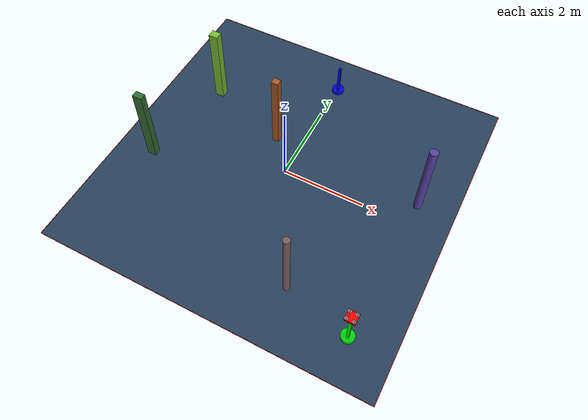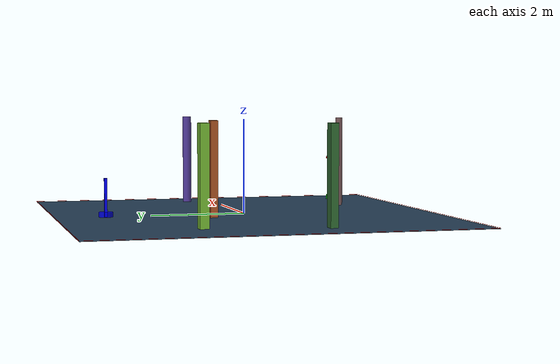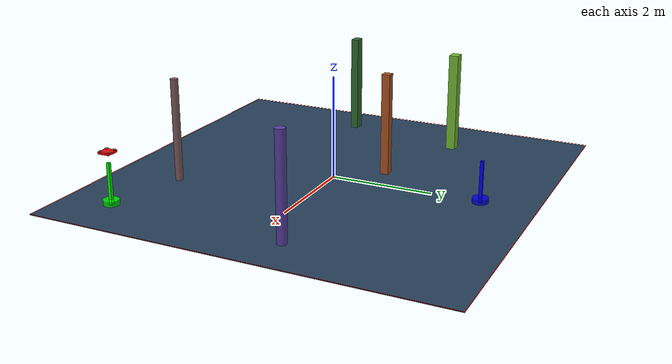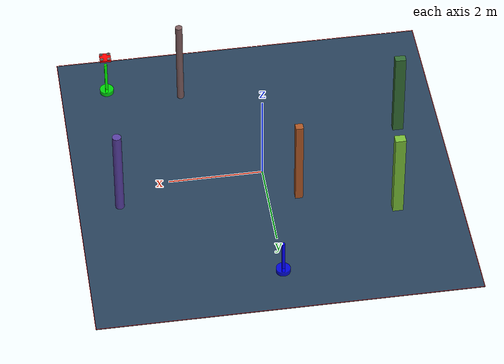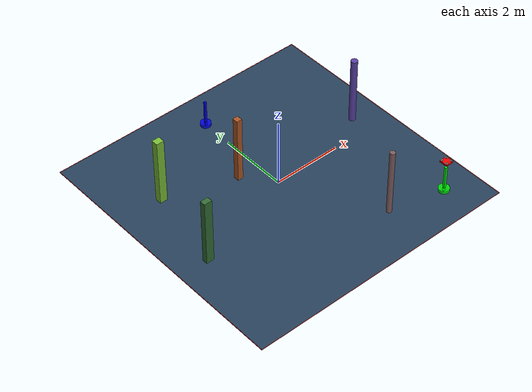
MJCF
<?xml version='1.0' encoding='utf-8'?>
<mujoco model="complex_uav_env">
  <compiler angle="degree" coordinate="local" inertiafromgeom="true" />
  <option integrator="RK4" timestep="0.01" />

  <visual>
    <headlight diffuse="0.6 0.6 0.6" ambient="0.3 0.3 0.3" />
    <rgba haze="0.15 0.25 0.35 1" />
    <global offwidth="2560" offheight="1440" />
  </visual>

  <asset>
    <texture type="skybox" builtin="gradient" rgb1="0.3 0.5 0.7" rgb2="0 0 0" width="512" height="3072" />
    <texture name="grid" type="2d" builtin="checker" rgb1="0.1 0.2 0.3" rgb2="0.2 0.3 0.4" width="512" height="512" />
    <material name="grid" texture="grid" texrepeat="1 1" />
  </asset>

  <worldbody>

    <geom name="ground" type="plane" size="4.0 4.0 0.1" material="grid" />
    <light name="light1" pos="0 0 4" dir="0 0 -1" diffuse="1 1 1" />

    <geom name="start_marker" type="cylinder" size="0.15 0.05" pos="3.0 -3.0 0.05" rgba="0 1 0 0.8" />
    <geom name="start_pole" type="box" size="0.03 0.03 0.4" pos="3.0 -3.0 0.4" rgba="0 1 0 1" />

    <geom name="goal_marker" type="cylinder" size="0.15 0.05" pos="0.01653837142507175 2.9492683027344384 0.05" rgba="0 0 1 0.8" />
    <geom name="goal_pole" type="box" size="0.03 0.03 0.4" pos="0.01653837142507175 2.9492683027344384 0.4" rgba="0 0 1 1" />

    <body name="chassis" pos="3.0 -3.0 1.0">
      <joint type="free" name="root" />
      <geom type="box" size="0.12 0.12 0.02" rgba="1.0 0.0 0.0 1.0" mass="0.8" />

      <geom type="box" size="0.08 0.01 0.005" pos="0 0 0.01" rgba="0.3 0.3 0.3 1" />
      <geom type="box" size="0.01 0.08 0.005" pos="0 0 0.01" rgba="0.3 0.3 0.3 1" />

      <geom type="cylinder" size="0.015 0.02" pos="0.08 0.08 0.015" rgba="0.2 0.2 0.2 1" />
      <geom type="cylinder" size="0.015 0.02" pos="-0.08 0.08 0.015" rgba="0.2 0.2 0.2 1" />
      <geom type="cylinder" size="0.015 0.02" pos="0.08 -0.08 0.015" rgba="0.2 0.2 0.2 1" />
      <geom type="cylinder" size="0.015 0.02" pos="-0.08 -0.08 0.015" rgba="0.2 0.2 0.2 1" />

      <geom type="cylinder" size="0.04 0.002" pos="0.08 0.08 0.035" rgba="0.7 0.7 0.7 0.8" />
      <geom type="cylinder" size="0.04 0.002" pos="-0.08 0.08 0.035" rgba="0.7 0.7 0.7 0.8" />
      <geom type="cylinder" size="0.04 0.002" pos="0.08 -0.08 0.035" rgba="0.7 0.7 0.7 0.8" />
      <geom type="cylinder" size="0.04 0.002" pos="-0.08 -0.08 0.035" rgba="0.7 0.7 0.7 0.8" />

      <site name="motor1" pos="0.08 0.08 0" size="0.01" />
      <site name="motor2" pos="-0.08 0.08 0" size="0.01" />
      <site name="motor3" pos="0.08 -0.08 0" size="0.01" />
      <site name="motor4" pos="-0.08 -0.08 0" size="0.01" />
    </body>
    <geom name="test_obs_0" type="box" size="0.08070531785430599 0.07985487856827143 1.0" pos="-0.6441147852337574 0.8107486773265082 1.0" rgba="0.6743082470012461 0.33501313582753345 0.1413292709674038 1.0" />
    <geom name="test_obs_1" type="cylinder" size="0.07545546834565059 1.0" pos="1.4194088640329374 -2.6200529158018213 1.0" rgba="0.4892583621770852 0.3606043277168647 0.3670933416685216 1.0" />
    <geom name="test_obs_2" type="box" size="0.11087013169701394 0.09308800396409322 1.0" pos="-2.638040814684848 1.4772539815861758 1.0" rgba="0.4667825192715199 0.7352518733827431 0.20882861775991737 1.0" />
    <geom name="test_obs_3" type="box" size="0.1146923292411093 0.07748307404380829 1.0" pos="-3.090408385802238 -0.9431603559920674 1.0" rgba="0.197565194225775 0.4224214404636355 0.19917395823341189 1.0" />
    <geom name="test_obs_4" type="cylinder" size="0.09535441088375121 1.0" pos="3.121026994231954 0.568225591699413 1.0" rgba="0.34269945259292645 0.2433613357365405 0.631951121194331 1.0" />
  <geom name="boundary_north" type="box" size="4.0 0.005 0.002" pos="0 4.0 0.002" rgba="1.0 0.0 0.0 1.0" /><geom name="boundary_south" type="box" size="4.0 0.005 0.002" pos="0 -4.0 0.002" rgba="1.0 0.0 0.0 1.0" /><geom name="boundary_east" type="box" size="0.005 4.0 0.002" pos="4.0 0 0.002" rgba="1.0 0.0 0.0 1.0" /><geom name="boundary_west" type="box" size="0.005 4.0 0.002" pos="-4.0 0 0.002" rgba="1.0 0.0 0.0 1.0" /></worldbody>

  <actuator>
    <motor name="m1" gear="0 0 1 0 0 0" site="motor1" />
    <motor name="m2" gear="0 0 1 0 0 0" site="motor2" />
    <motor name="m3" gear="0 0 1 0 0 0" site="motor3" />
    <motor name="m4" gear="0 0 1 0 0 0" site="motor4" />
  </actuator>
</mujoco>
